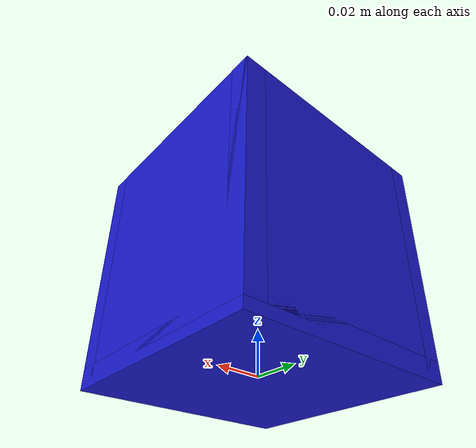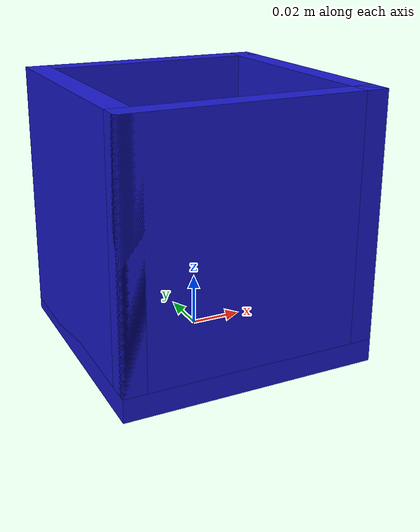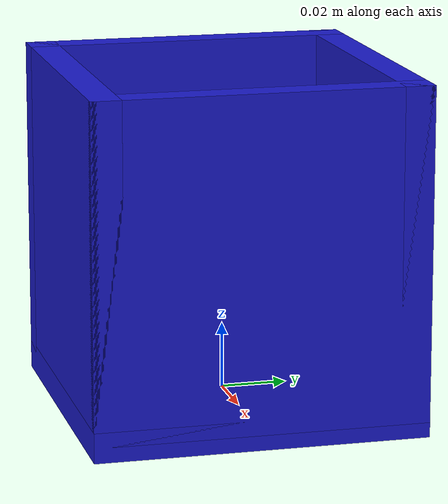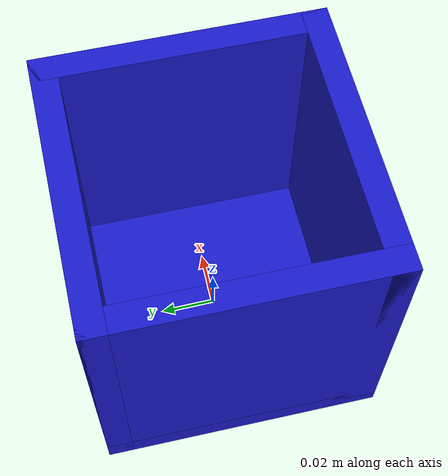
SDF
<?xml version="1.0" ?>
<!-- |    This document was autogenerated by xmacro from model.sdf.xmacro              | -->
<!-- |    EDITING THIS FILE BY HAND IS NOT RECOMMENDED                                 | -->
<sdf version="1.6">
	<!-- basket parameters -->
	<!-- end user defined parameters -->
	<!-- macro block to paste material properties -->
	<!-- macro block to paste friction properties -->
	<!-- macro block to paste inertial properties-->
	<!-- macro block to paste a fixed joint to 'base'-->
	<!-- macro block to construct a link-->
	<!-- create the basket -->
	<model name="basket">
		<!-- prevent any movement -->
		<static>1</static>
		<link name="base">
			<pose>0.0 0.0 0.0 0 0 0</pose>
			<inertial>
				<mass>0.2</mass>
				<inertia>
					<ixx>0.0001</ixx>
					<iyy>0.0001</iyy>
					<izz>0.0001</izz>
					<ixy>0</ixy>
					<ixz>0</ixz>
					<iyz>0</iyz>
				</inertia>
			</inertial>
			<visual name="base_visual">
				<geometry>
					<box>
						<size>0.1 0.1 0.009</size>
					</box>
				</geometry>
				<material>
					<emissive>0 0 0 1</emissive>
					<ambient>0.1 0.1 0.8 1</ambient>
					<diffuse>0.1 0.1 0.8 1</diffuse>
					<specular>0.01 0.01 0.01 1</specular>
				</material>
			</visual>
			<collision name="base_collision">
				<geometry>
					<box>
						<size>0.1 0.1 0.009</size>
					</box>
				</geometry>
				<surface>
					<friction>
						<ode>
							<mu>10.0</mu>
							<mu2>10.0</mu2>
						</ode>
					</friction>
				</surface>
			</collision>
		</link>
		<link name="x1">
			<pose>0.045500000000000006 0.0 0.05 0 0 0</pose>
			<inertial>
				<mass>0.2</mass>
				<inertia>
					<ixx>0.0001</ixx>
					<iyy>0.0001</iyy>
					<izz>0.0001</izz>
					<ixy>0</ixy>
					<ixz>0</ixz>
					<iyz>0</iyz>
				</inertia>
			</inertial>
			<visual name="x1_visual">
				<geometry>
					<box>
						<size>0.009 0.1 0.1</size>
					</box>
				</geometry>
				<material>
					<emissive>0 0 0 1</emissive>
					<ambient>0.1 0.1 0.8 1</ambient>
					<diffuse>0.1 0.1 0.8 1</diffuse>
					<specular>0.01 0.01 0.01 1</specular>
				</material>
			</visual>
			<collision name="x1_collision">
				<geometry>
					<box>
						<size>0.009 0.1 0.1</size>
					</box>
				</geometry>
				<surface>
					<friction>
						<ode>
							<mu>10.0</mu>
							<mu2>10.0</mu2>
						</ode>
					</friction>
				</surface>
			</collision>
		</link>
		<joint name="x1_joint" type="fixed">
			<parent>base</parent>
			<child>x1</child>
		</joint>
		<link name="x2">
			<pose>-0.045500000000000006 0.0 0.05 0 0 0</pose>
			<inertial>
				<mass>0.2</mass>
				<inertia>
					<ixx>0.0001</ixx>
					<iyy>0.0001</iyy>
					<izz>0.0001</izz>
					<ixy>0</ixy>
					<ixz>0</ixz>
					<iyz>0</iyz>
				</inertia>
			</inertial>
			<visual name="x2_visual">
				<geometry>
					<box>
						<size>0.009 0.1 0.1</size>
					</box>
				</geometry>
				<material>
					<emissive>0 0 0 1</emissive>
					<ambient>0.1 0.1 0.8 1</ambient>
					<diffuse>0.1 0.1 0.8 1</diffuse>
					<specular>0.01 0.01 0.01 1</specular>
				</material>
			</visual>
			<collision name="x2_collision">
				<geometry>
					<box>
						<size>0.009 0.1 0.1</size>
					</box>
				</geometry>
				<surface>
					<friction>
						<ode>
							<mu>10.0</mu>
							<mu2>10.0</mu2>
						</ode>
					</friction>
				</surface>
			</collision>
		</link>
		<joint name="x2_joint" type="fixed">
			<parent>base</parent>
			<child>x2</child>
		</joint>
		<link name="y1">
			<pose>0.0 0.045500000000000006 0.05 0 0 0</pose>
			<inertial>
				<mass>0.2</mass>
				<inertia>
					<ixx>0.0001</ixx>
					<iyy>0.0001</iyy>
					<izz>0.0001</izz>
					<ixy>0</ixy>
					<ixz>0</ixz>
					<iyz>0</iyz>
				</inertia>
			</inertial>
			<visual name="y1_visual">
				<geometry>
					<box>
						<size>0.1 0.009 0.1</size>
					</box>
				</geometry>
				<material>
					<emissive>0 0 0 1</emissive>
					<ambient>0.1 0.1 0.8 1</ambient>
					<diffuse>0.1 0.1 0.8 1</diffuse>
					<specular>0.01 0.01 0.01 1</specular>
				</material>
			</visual>
			<collision name="y1_collision">
				<geometry>
					<box>
						<size>0.1 0.009 0.1</size>
					</box>
				</geometry>
				<surface>
					<friction>
						<ode>
							<mu>10.0</mu>
							<mu2>10.0</mu2>
						</ode>
					</friction>
				</surface>
			</collision>
		</link>
		<joint name="y1_joint" type="fixed">
			<parent>base</parent>
			<child>y1</child>
		</joint>
		<link name="y2">
			<pose>0.0 -0.045500000000000006 0.05 0 0 0</pose>
			<inertial>
				<mass>0.2</mass>
				<inertia>
					<ixx>0.0001</ixx>
					<iyy>0.0001</iyy>
					<izz>0.0001</izz>
					<ixy>0</ixy>
					<ixz>0</ixz>
					<iyz>0</iyz>
				</inertia>
			</inertial>
			<visual name="y2_visual">
				<geometry>
					<box>
						<size>0.1 0.009 0.1</size>
					</box>
				</geometry>
				<material>
					<emissive>0 0 0 1</emissive>
					<ambient>0.1 0.1 0.8 1</ambient>
					<diffuse>0.1 0.1 0.8 1</diffuse>
					<specular>0.01 0.01 0.01 1</specular>
				</material>
			</visual>
			<collision name="y2_collision">
				<geometry>
					<box>
						<size>0.1 0.009 0.1</size>
					</box>
				</geometry>
				<surface>
					<friction>
						<ode>
							<mu>10.0</mu>
							<mu2>10.0</mu2>
						</ode>
					</friction>
				</surface>
			</collision>
		</link>
		<joint name="y2_joint" type="fixed">
			<parent>base</parent>
			<child>y2</child>
		</joint>
	</model>
</sdf>
